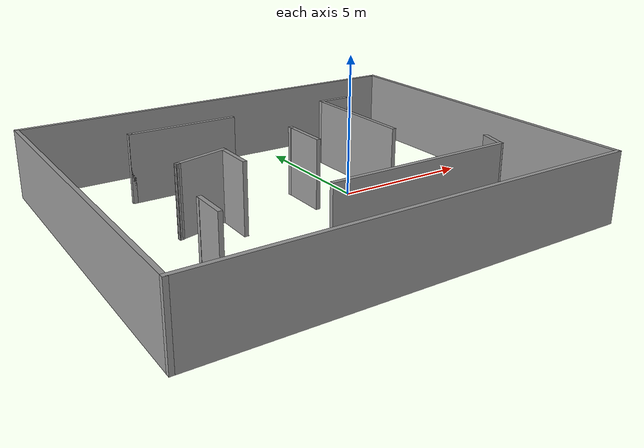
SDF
<?xml version='1.0'?>
<sdf version='1.7'>
  <model name='my_model'>
    <pose>-2.11463 -0.415564 0 0 -0 0</pose>
    <link name='Wall_0'>
      <collision name='Wall_0_Collision'>
        <geometry>
          <box>
            <size>15.5 0.15 2.5</size>
          </box>
        </geometry>
        <pose>0 0 1.25 0 -0 0</pose>
      </collision>
      <visual name='Wall_0_Visual'>
        <pose>0 0 1.25 0 -0 0</pose>
        <geometry>
          <box>
            <size>15.5 0.15 2.5</size>
          </box>
        </geometry>
        <material>
          <script>
            <uri>file://media/materials/scripts/gazebo.material</uri>
            <name>Gazebo/Grey</name>
          </script>
          <ambient>1 1 1 1</ambient>
        </material>
        <meta>
          <layer>0</layer>
        </meta>
      </visual>
      <pose>0 6.3 0 0 -0 0</pose>
    </link>
    <link name='Wall_1'>
      <collision name='Wall_1_Collision'>
        <geometry>
          <box>
            <size>12.75 0.15 2.5</size>
          </box>
        </geometry>
        <pose>0 0 1.25 0 -0 0</pose>
      </collision>
      <visual name='Wall_1_Visual'>
        <pose>0 0 1.25 0 -0 0</pose>
        <geometry>
          <box>
            <size>12.75 0.15 2.5</size>
          </box>
        </geometry>
        <material>
          <script>
            <uri>file://media/materials/scripts/gazebo.material</uri>
            <name>Gazebo/Grey</name>
          </script>
          <ambient>1 1 1 1</ambient>
        </material>
        <meta>
          <layer>0</layer>
        </meta>
      </visual>
      <pose>7.675 0 0 0 -0 -1.5708</pose>
    </link>
    <link name='Wall_10'>
      <collision name='Wall_10_Collision'>
        <geometry>
          <box>
            <size>1.25 0.15 2.5</size>
          </box>
        </geometry>
        <pose>0 0 1.25 0 -0 0</pose>
      </collision>
      <visual name='Wall_10_Visual'>
        <pose>0 0 1.25 0 -0 0</pose>
        <geometry>
          <box>
            <size>1.25 0.15 2.5</size>
          </box>
        </geometry>
        <material>
          <script>
            <uri>file://media/materials/scripts/gazebo.material</uri>
            <name>Gazebo/Grey</name>
          </script>
          <ambient>1 1 1 1</ambient>
        </material>
        <meta>
          <layer>0</layer>
        </meta>
      </visual>
      <pose>3.82755 3.82219 0 0 -0 3.14159</pose>
    </link>
    <link name='Wall_11'>
      <collision name='Wall_11_Collision'>
        <geometry>
          <box>
            <size>4.5 0.15 2.5</size>
          </box>
        </geometry>
        <pose>0 0 1.25 0 -0 0</pose>
      </collision>
      <visual name='Wall_11_Visual'>
        <pose>0 0 1.25 0 -0 0</pose>
        <geometry>
          <box>
            <size>4.5 0.15 2.5</size>
          </box>
        </geometry>
        <material>
          <script>
            <uri>file://media/materials/scripts/gazebo.material</uri>
            <name>Gazebo/Grey</name>
          </script>
          <ambient>1 1 1 1</ambient>
        </material>
        <meta>
          <layer>0</layer>
        </meta>
      </visual>
      <pose>3.27755 1.64719 0 0 -0 -1.5708</pose>
    </link>
    <link name='Wall_13'>
      <collision name='Wall_13_Collision'>
        <geometry>
          <box>
            <size>1 0.15 2.5</size>
          </box>
        </geometry>
        <pose>0 0 1.25 0 -0 0</pose>
      </collision>
      <visual name='Wall_13_Visual'>
        <pose>0 0 1.25 0 -0 0</pose>
        <geometry>
          <box>
            <size>1 0.15 2.5</size>
          </box>
        </geometry>
        <material>
          <script>
            <uri>file://media/materials/scripts/gazebo.material</uri>
            <name>Gazebo/Grey</name>
          </script>
          <ambient>1 1 1 1</ambient>
        </material>
        <meta>
          <layer>0</layer>
        </meta>
      </visual>
      <pose>5.27703 -3.28759 0 0 -0 -1.8326</pose>
    </link>
    <link name='Wall_14'>
      <collision name='Wall_14_Collision'>
        <geometry>
          <box>
            <size>6.75 0.15 2.5</size>
          </box>
        </geometry>
        <pose>0 0 1.25 0 -0 0</pose>
      </collision>
      <visual name='Wall_14_Visual'>
        <pose>0 0 1.25 0 -0 0</pose>
        <geometry>
          <box>
            <size>6.75 0.15 2.5</size>
          </box>
        </geometry>
        <material>
          <script>
            <uri>file://media/materials/scripts/gazebo.material</uri>
            <name>Gazebo/Grey</name>
          </script>
          <ambient>1 1 1 1</ambient>
        </material>
        <meta>
          <layer>0</layer>
        </meta>
      </visual>
      <pose>1.86703 -3.6981 0 0 -0 3.14159</pose>
    </link>
    <link name='Wall_16'>
      <collision name='Wall_16_Collision'>
        <geometry>
          <box>
            <size>0.16 0.15 2.5</size>
          </box>
        </geometry>
        <pose>0 0 1.25 0 -0 0</pose>
      </collision>
      <visual name='Wall_16_Visual'>
        <pose>0 0 1.25 0 -0 0</pose>
        <geometry>
          <box>
            <size>0.16 0.15 2.5</size>
          </box>
        </geometry>
        <material>
          <script>
            <uri>file://media/materials/scripts/gazebo.material</uri>
            <name>Gazebo/Grey</name>
          </script>
          <ambient>1 1 1 1</ambient>
        </material>
        <meta>
          <layer>0</layer>
        </meta>
      </visual>
      <pose>-4.47428 0.156307 0 0 -0 0</pose>
    </link>
    <link name='Wall_17'>
      <collision name='Wall_17_Collision'>
        <geometry>
          <box>
            <size>2 0.15 2.5</size>
          </box>
        </geometry>
        <pose>0 0 1.25 0 -0 0</pose>
      </collision>
      <visual name='Wall_17_Visual'>
        <pose>0 0 1.25 0 -0 0</pose>
        <geometry>
          <box>
            <size>2 0.15 2.5</size>
          </box>
        </geometry>
        <material>
          <script>
            <uri>file://media/materials/scripts/gazebo.material</uri>
            <name>Gazebo/Grey</name>
          </script>
          <ambient>1 1 1 1</ambient>
        </material>
        <meta>
          <layer>0</layer>
        </meta>
      </visual>
      <pose>-3.57579 0.395714 0 0 -0 0.261799</pose>
    </link>
    <link name='Wall_18'>
      <collision name='Wall_18_Collision'>
        <geometry>
          <box>
            <size>1.5 0.15 2.5</size>
          </box>
        </geometry>
        <pose>0 0 1.25 0 -0 0</pose>
      </collision>
      <visual name='Wall_18_Visual'>
        <pose>0 0 1.25 0 -0 0</pose>
        <geometry>
          <box>
            <size>1.5 0.15 2.5</size>
          </box>
        </geometry>
        <material>
          <script>
            <uri>file://media/materials/scripts/gazebo.material</uri>
            <name>Gazebo/Grey</name>
          </script>
          <ambient>1 1 1 1</ambient>
        </material>
        <meta>
          <layer>0</layer>
        </meta>
      </visual>
      <pose>-2.68231 -0.039878 0 0 -0 -1.5708</pose>
    </link>
    <link name='Wall_2'>
      <collision name='Wall_2_Collision'>
        <geometry>
          <box>
            <size>15.5 0.15 2.5</size>
          </box>
        </geometry>
        <pose>0 0 1.25 0 -0 0</pose>
      </collision>
      <visual name='Wall_2_Visual'>
        <pose>0 0 1.25 0 -0 0</pose>
        <geometry>
          <box>
            <size>15.5 0.15 2.5</size>
          </box>
        </geometry>
        <material>
          <script>
            <uri>file://media/materials/scripts/gazebo.material</uri>
            <name>Gazebo/Grey</name>
          </script>
          <ambient>1 1 1 1</ambient>
        </material>
        <meta>
          <layer>0</layer>
        </meta>
      </visual>
      <pose>0 -6.3 0 0 -0 3.14159</pose>
    </link>
    <link name='Wall_20'>
      <collision name='Wall_20_Collision'>
        <geometry>
          <box>
            <size>0.16 0.15 2.5</size>
          </box>
        </geometry>
        <pose>0 0 1.25 0 -0 0</pose>
      </collision>
      <visual name='Wall_20_Visual'>
        <pose>0 0 1.25 0 -0 0</pose>
        <geometry>
          <box>
            <size>0.16 0.15 2.5</size>
          </box>
        </geometry>
        <material>
          <script>
            <uri>file://media/materials/scripts/gazebo.material</uri>
            <name>Gazebo/Grey</name>
          </script>
          <ambient>1 1 1 1</ambient>
        </material>
        <meta>
          <layer>0</layer>
        </meta>
      </visual>
      <pose>0.415573 1.4931 0 0 -0 0</pose>
    </link>
    <link name='Wall_21'>
      <collision name='Wall_21_Collision'>
        <geometry>
          <box>
            <size>1.75 0.15 2.5</size>
          </box>
        </geometry>
        <pose>0 0 1.25 0 -0 0</pose>
      </collision>
      <visual name='Wall_21_Visual'>
        <pose>0 0 1.25 0 -0 0</pose>
        <geometry>
          <box>
            <size>1.75 0.15 2.5</size>
          </box>
        </geometry>
        <material>
          <script>
            <uri>file://media/materials/scripts/gazebo.material</uri>
            <name>Gazebo/Grey</name>
          </script>
          <ambient>1 1 1 1</ambient>
        </material>
        <meta>
          <layer>0</layer>
        </meta>
      </visual>
      <pose>0.420572 0.6931 0 0 -0 -1.5708</pose>
    </link>
    <link name='Wall_23'>
      <collision name='Wall_23_Collision'>
        <geometry>
          <box>
            <size>0.16 0.15 2.5</size>
          </box>
        </geometry>
        <pose>0 0 1.25 0 -0 0</pose>
      </collision>
      <visual name='Wall_23_Visual'>
        <pose>0 0 1.25 0 -0 0</pose>
        <geometry>
          <box>
            <size>0.16 0.15 2.5</size>
          </box>
        </geometry>
        <material>
          <script>
            <uri>file://media/materials/scripts/gazebo.material</uri>
            <name>Gazebo/Grey</name>
          </script>
          <ambient>1 1 1 1</ambient>
        </material>
        <meta>
          <layer>0</layer>
        </meta>
      </visual>
      <pose>-5.07231 -2.65799 0 0 -0 0</pose>
    </link>
    <link name='Wall_24'>
      <collision name='Wall_24_Collision'>
        <geometry>
          <box>
            <size>1.25 0.15 2.5</size>
          </box>
        </geometry>
        <pose>0 0 1.25 0 -0 0</pose>
      </collision>
      <visual name='Wall_24_Visual'>
        <pose>0 0 1.25 0 -0 0</pose>
        <geometry>
          <box>
            <size>1.25 0.15 2.5</size>
          </box>
        </geometry>
        <material>
          <script>
            <uri>file://media/materials/scripts/gazebo.material</uri>
            <name>Gazebo/Grey</name>
          </script>
          <ambient>1 1 1 1</ambient>
        </material>
        <meta>
          <layer>0</layer>
        </meta>
      </visual>
      <pose>-5.06731 -3.20799 0 0 -0 -1.5708</pose>
    </link>
    <link name='Wall_3'>
      <collision name='Wall_3_Collision'>
        <geometry>
          <box>
            <size>12.75 0.15 2.5</size>
          </box>
        </geometry>
        <pose>0 0 1.25 0 -0 0</pose>
      </collision>
      <visual name='Wall_3_Visual'>
        <pose>0 0 1.25 0 -0 0</pose>
        <geometry>
          <box>
            <size>12.75 0.15 2.5</size>
          </box>
        </geometry>
        <material>
          <script>
            <uri>file://media/materials/scripts/gazebo.material</uri>
            <name>Gazebo/Grey</name>
          </script>
          <ambient>1 1 1 1</ambient>
        </material>
        <meta>
          <layer>0</layer>
        </meta>
      </visual>
      <pose>-7.675 0 0 0 -0 1.5708</pose>
    </link>
    <link name='Wall_7'>
      <collision name='Wall_7_Collision'>
        <geometry>
          <box>
            <size>0.16 0.15 2.5</size>
          </box>
        </geometry>
        <pose>0 0 1.25 0 -0 0</pose>
      </collision>
      <visual name='Wall_7_Visual'>
        <pose>0 0 1.25 0 -0 0</pose>
        <geometry>
          <box>
            <size>0.16 0.15 2.5</size>
          </box>
        </geometry>
        <material>
          <script>
            <uri>file://media/materials/scripts/gazebo.material</uri>
            <name>Gazebo/Grey</name>
          </script>
          <ambient>1 1 1 1</ambient>
        </material>
        <meta>
          <layer>0</layer>
        </meta>
      </visual>
      <pose>-4.58039 3.76101 0 0 -0 0</pose>
    </link>
    <link name='Wall_8'>
      <collision name='Wall_8_Collision'>
        <geometry>
          <box>
            <size>4 0.15 2.5</size>
          </box>
        </geometry>
        <pose>0 0 1.25 0 -0 0</pose>
      </collision>
      <visual name='Wall_8_Visual'>
        <pose>0 0 1.25 0 -0 0</pose>
        <geometry>
          <box>
            <size>4 0.15 2.5</size>
          </box>
        </geometry>
        <material>
          <script>
            <uri>file://media/materials/scripts/gazebo.material</uri>
            <name>Gazebo/Grey</name>
          </script>
          <ambient>1 1 1 1</ambient>
        </material>
        <meta>
          <layer>0</layer>
        </meta>
      </visual>
      <pose>-2.65039 3.76101 0 0 -0 0</pose>
    </link>
    <static>1</static>
  </model>
</sdf>
